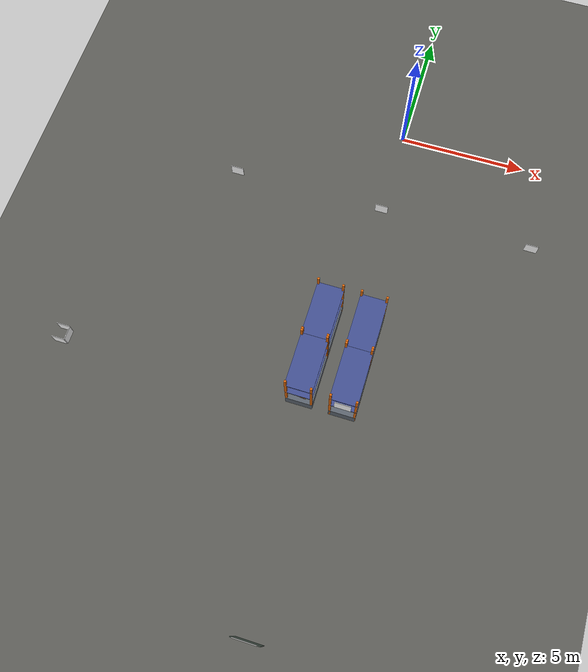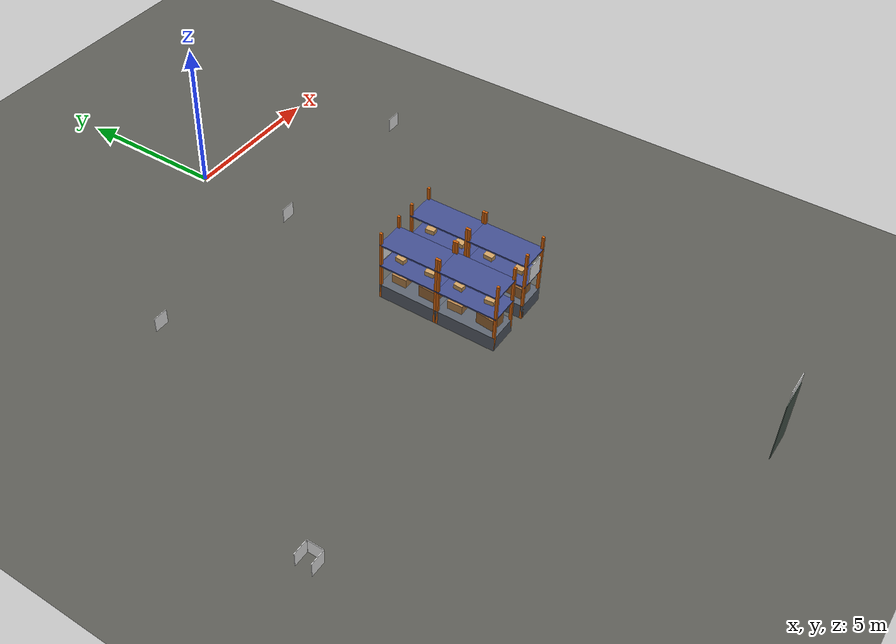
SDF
<sdf version="1.8">
 <world name="warehouse">
  <model name="ground_plane">
   <static>true</static>
   <link name="link">
    <collision name="collision">
     <geometry><plane><normal>0 0 1</normal><size>64 44</size></plane></geometry>
     <surface><friction><ode><mu>0.8</mu><mu2>0.8</mu2></ode></friction></surface>
    </collision>
    <visual name="visual">
     <geometry><plane><normal>0 0 1</normal><size>64 44</size></plane></geometry>
     <material>
      <ambient>0.35 0.35 0.33 1</ambient>
      <diffuse>0.35 0.35 0.33 1</diffuse>
      <specular>0.05 0.05 0.05 1</specular>
     </material>
    </visual>
   </link>
  </model>
  <model name="pillar_3_marker_0">
   <static>true</static>
   <pose>-9.7380 -12.0000 0.0000 0.0000 0.0000 0.0000</pose>
   <link name="link">
    <collision name="plate_collision">
     <pose>0 0 0.250 0 0 0</pose>
     <geometry><box><size>0.02 0.50 0.50</size></box></geometry>
    </collision>
    <visual name="plate">
     <pose>0 0 0.250 0 0 0</pose>
     <geometry><box><size>0.02 0.50 0.50</size></box></geometry>
     <material>
      <ambient>1 1 1 1</ambient>
      <diffuse>1 1 1 1</diffuse>
      <specular>0.05 0.05 0.05 1</specular>
      <pbr>
       <metal>
        <albedo_map>model://dock_marker/materials/textures/aruco_4x4_100_18.png</albedo_map>
        <metalness>0.0</metalness>
        <roughness>0.9</roughness>
       </metal>
      </pbr>
     </material>
    </visual>
   </link>
  </model>
  <model name="pillar_3_marker_2">
   <static>true</static>
   <pose>-10.0000 -11.7380 0.0000 0.0000 0.0000 1.5708</pose>
   <link name="link">
    <collision name="plate_collision">
     <pose>0 0 0.250 0 0 0</pose>
     <geometry><box><size>0.02 0.50 0.50</size></box></geometry>
    </collision>
    <visual name="plate">
     <pose>0 0 0.250 0 0 0</pose>
     <geometry><box><size>0.02 0.50 0.50</size></box></geometry>
     <material>
      <ambient>1 1 1 1</ambient>
      <diffuse>1 1 1 1</diffuse>
      <specular>0.05 0.05 0.05 1</specular>
      <pbr>
       <metal>
        <albedo_map>model://dock_marker/materials/textures/aruco_4x4_100_20.png</albedo_map>
        <metalness>0.0</metalness>
        <roughness>0.9</roughness>
       </metal>
      </pbr>
     </material>
    </visual>
   </link>
  </model>
  <model name="pillar_3_marker_3">
   <static>true</static>
   <pose>-10.0000 -12.2620 0.0000 0.0000 0.0000 -1.5708</pose>
   <link name="link">
    <collision name="plate_collision">
     <pose>0 0 0.250 0 0 0</pose>
     <geometry><box><size>0.02 0.50 0.50</size></box></geometry>
    </collision>
    <visual name="plate">
     <pose>0 0 0.250 0 0 0</pose>
     <geometry><box><size>0.02 0.50 0.50</size></box></geometry>
     <material>
      <ambient>1 1 1 1</ambient>
      <diffuse>1 1 1 1</diffuse>
      <specular>0.05 0.05 0.05 1</specular>
      <pbr>
       <metal>
        <albedo_map>model://dock_marker/materials/textures/aruco_4x4_100_21.png</albedo_map>
        <metalness>0.0</metalness>
        <roughness>0.9</roughness>
       </metal>
      </pbr>
     </material>
    </visual>
   </link>
  </model>
  <model name="rack_marker_75">
   <static>true</static>
   <pose>-6.0000 -3.5120 0.0000 0.0000 0.0000 -1.5708</pose>
   <link name="link">
    <collision name="plate_collision">
     <pose>0 0 0.250 0 0 0</pose>
     <geometry><box><size>0.02 0.50 0.50</size></box></geometry>
    </collision>
    <visual name="plate">
     <pose>0 0 0.250 0 0 0</pose>
     <geometry><box><size>0.02 0.50 0.50</size></box></geometry>
     <material>
      <ambient>1 1 1 1</ambient>
      <diffuse>1 1 1 1</diffuse>
      <specular>0.05 0.05 0.05 1</specular>
      <pbr>
       <metal>
        <albedo_map>model://dock_marker/materials/textures/aruco_4x4_100_75.png</albedo_map>
        <metalness>0.0</metalness>
        <roughness>0.9</roughness>
       </metal>
      </pbr>
     </material>
    </visual>
   </link>
  </model>
  <model name="rack_marker_77">
   <static>true</static>
   <pose>0.0000 -3.5120 0.0000 0.0000 0.0000 -1.5708</pose>
   <link name="link">
    <collision name="plate_collision">
     <pose>0 0 0.250 0 0 0</pose>
     <geometry><box><size>0.02 0.50 0.50</size></box></geometry>
    </collision>
    <visual name="plate">
     <pose>0 0 0.250 0 0 0</pose>
     <geometry><box><size>0.02 0.50 0.50</size></box></geometry>
     <material>
      <ambient>1 1 1 1</ambient>
      <diffuse>1 1 1 1</diffuse>
      <specular>0.05 0.05 0.05 1</specular>
      <pbr>
       <metal>
        <albedo_map>model://dock_marker/materials/textures/aruco_4x4_100_77.png</albedo_map>
        <metalness>0.0</metalness>
        <roughness>0.9</roughness>
       </metal>
      </pbr>
     </material>
    </visual>
   </link>
  </model>
  <model name="rack_marker_79">
   <static>true</static>
   <pose>6.0000 -3.5120 0.0000 0.0000 0.0000 -1.5708</pose>
   <link name="link">
    <collision name="plate_collision">
     <pose>0 0 0.250 0 0 0</pose>
     <geometry><box><size>0.02 0.50 0.50</size></box></geometry>
    </collision>
    <visual name="plate">
     <pose>0 0 0.250 0 0 0</pose>
     <geometry><box><size>0.02 0.50 0.50</size></box></geometry>
     <material>
      <ambient>1 1 1 1</ambient>
      <diffuse>1 1 1 1</diffuse>
      <specular>0.05 0.05 0.05 1</specular>
      <pbr>
       <metal>
        <albedo_map>model://dock_marker/materials/textures/aruco_4x4_100_79.png</albedo_map>
        <metalness>0.0</metalness>
        <roughness>0.9</roughness>
       </metal>
      </pbr>
     </material>
    </visual>
   </link>
  </model>
  <include>
   <uri>model://rack</uri>
   <name>rack_narrow_W1</name>
   <pose>-0.8000 -11.0000 0.0000 0.0000 0.0000 1.5708</pose>
  </include>
  <include>
   <uri>model://rack</uri>
   <name>rack_narrow_W2</name>
   <pose>-0.8000 -9.0000 0.0000 0.0000 0.0000 1.5708</pose>
  </include>
  <include>
   <uri>model://rack</uri>
   <name>rack_narrow_E1</name>
   <pose>0.8000 -11.0000 0.0000 0.0000 0.0000 1.5708</pose>
  </include>
  <include>
   <uri>model://rack</uri>
   <name>rack_narrow_E2</name>
   <pose>0.8000 -9.0000 0.0000 0.0000 0.0000 1.5708</pose>
  </include>
  <include>
   <uri>model://box_large</uri>
   <name>rack_narrow_W1_box_large_0</name>
   <pose>-0.8000 -11.5286 0.5000 0.0000 0.0000 1.4605</pose>
   <static>true</static>
  </include>
  <include>
   <uri>model://box_medium</uri>
   <name>rack_narrow_W1_box_medium_1</name>
   <pose>-0.8000 -10.4564 0.5000 0.0000 0.0000 1.5921</pose>
   <static>true</static>
  </include>
  <include>
   <uri>model://box_small</uri>
   <name>rack_narrow_W1_box_small_2</name>
   <pose>-0.8000 -11.5027 1.2750 0.0000 0.0000 1.6562</pose>
   <static>true</static>
  </include>
  <include>
   <uri>model://box_small</uri>
   <name>rack_narrow_W1_box_small_3</name>
   <pose>-0.8000 -10.4693 1.2750 0.0000 0.0000 1.4779</pose>
   <static>true</static>
  </include>
  <include>
   <uri>model://box_large</uri>
   <name>rack_narrow_W2_box_large_0</name>
   <pose>-0.8000 -9.5403 0.5000 0.0000 0.0000 1.5501</pose>
   <static>true</static>
  </include>
  <include>
   <uri>model://box_medium</uri>
   <name>rack_narrow_W2_box_medium_1</name>
   <pose>-0.8000 -8.5076 0.5000 0.0000 0.0000 1.5609</pose>
   <static>true</static>
  </include>
  <include>
   <uri>model://box_small</uri>
   <name>rack_narrow_W2_box_small_2</name>
   <pose>-0.8000 -9.4771 1.2750 0.0000 0.0000 1.6228</pose>
   <static>true</static>
  </include>
  <include>
   <uri>model://box_small</uri>
   <name>rack_narrow_W2_box_small_3</name>
   <pose>-0.8000 -8.4516 1.2750 0.0000 0.0000 1.4503</pose>
   <static>true</static>
  </include>
  <include>
   <uri>model://box_large</uri>
   <name>rack_narrow_E1_box_large_0</name>
   <pose>0.8000 -11.5097 0.5000 0.0000 0.0000 1.5226</pose>
   <static>true</static>
  </include>
  <include>
   <uri>model://box_medium</uri>
   <name>rack_narrow_E1_box_medium_1</name>
   <pose>0.8000 -10.4638 0.5000 0.0000 0.0000 1.4954</pose>
   <static>true</static>
  </include>
  <include>
   <uri>model://box_small</uri>
   <name>rack_narrow_E1_box_small_2</name>
   <pose>0.8000 -11.5310 1.2750 0.0000 0.0000 1.5554</pose>
   <static>true</static>
  </include>
  <include>
   <uri>model://box_small</uri>
   <name>rack_narrow_E1_box_small_3</name>
   <pose>0.8000 -10.5078 1.2750 0.0000 0.0000 1.5044</pose>
   <static>true</static>
  </include>
  <include>
   <uri>model://box_large</uri>
   <name>rack_narrow_E2_box_large_0</name>
   <pose>0.8000 -9.5250 0.5000 0.0000 0.0000 1.6978</pose>
   <static>true</static>
  </include>
  <include>
   <uri>model://box_medium</uri>
   <name>rack_narrow_E2_box_medium_1</name>
   <pose>0.8000 -8.5057 0.5000 0.0000 0.0000 1.6792</pose>
   <static>true</static>
  </include>
  <include>
   <uri>model://box_small</uri>
   <name>rack_narrow_E2_box_small_2</name>
   <pose>0.8000 -9.4950 1.2750 0.0000 0.0000 1.4360</pose>
   <static>true</static>
  </include>
  <include>
   <uri>model://box_small</uri>
   <name>rack_narrow_E2_box_small_3</name>
   <pose>0.8000 -8.4501 1.2750 0.0000 0.0000 1.6716</pose>
   <static>true</static>
  </include>
  <model name="sign_caution_narrow_north">
   <static>true</static>
   <pose>-0.8000 -7.9880 0.0000 0.0000 0.0000 1.5708</pose>
   <link name="link">
    <visual name="plate">
     <pose>0 0 1.600 0 0 0</pose>
     <geometry><box><size>0.02 0.60 0.60</size></box></geometry>
     <material>
      <ambient>1 1 1 1</ambient>
      <diffuse>1 1 1 1</diffuse>
      <specular>0.05 0.05 0.05 1</specular>
      <pbr>
       <metal>
        <albedo_map>model://sign/materials/textures/sign_caution_narrow.png</albedo_map>
        <metalness>0.0</metalness>
        <roughness>0.9</roughness>
       </metal>
      </pbr>
     </material>
    </visual>
   </link>
  </model>
  <model name="sign_caution_narrow_south">
   <static>true</static>
   <pose>0.8000 -12.0120 0.0000 0.0000 0.0000 -1.5708</pose>
   <link name="link">
    <visual name="plate">
     <pose>0 0 1.600 0 0 0</pose>
     <geometry><box><size>0.02 0.60 0.60</size></box></geometry>
     <material>
      <ambient>1 1 1 1</ambient>
      <diffuse>1 1 1 1</diffuse>
      <specular>0.05 0.05 0.05 1</specular>
      <pbr>
       <metal>
        <albedo_map>model://sign/materials/textures/sign_caution_narrow.png</albedo_map>
        <metalness>0.0</metalness>
        <roughness>0.9</roughness>
       </metal>
      </pbr>
     </material>
    </visual>
   </link>
  </model>
  <model name="sign_exit_south">
   <static>true</static>
   <pose>0.0000 -19.9880 0.0000 0.0000 0.0000 1.5708</pose>
   <link name="link">
    <visual name="plate">
     <pose>0 0 2.400 0 0 0</pose>
     <geometry><box><size>0.02 0.80 0.30</size></box></geometry>
     <material>
      <ambient>1 1 1 1</ambient>
      <diffuse>1 1 1 1</diffuse>
      <specular>0.05 0.05 0.05 1</specular>
      <pbr>
       <metal>
        <albedo_map>model://sign/materials/textures/sign_exit.png</albedo_map>
        <metalness>0.0</metalness>
        <roughness>0.9</roughness>
       </metal>
      </pbr>
     </material>
    </visual>
   </link>
  </model>
  <model name="door_exit_south">
   <static>true</static>
   <pose>0.0000 -19.9880 0.0000 0.0000 0.0000 1.5708</pose>
   <link name="link">
    <visual name="door">
     <pose>-0.002 0 1.05 0 0 0</pose>
     <geometry><box><size>0.02 1.0 2.1</size></box></geometry>
     <material><ambient>0.30 0.36 0.32 1</ambient><diffuse>0.30 0.36 0.32 1</diffuse></material>
    </visual>
   </link>
  </model>
 </world>
</sdf>
